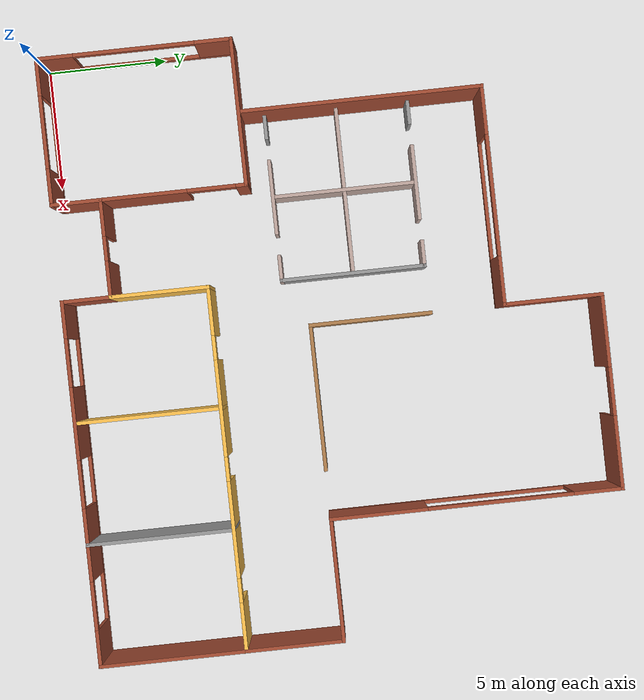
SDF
<?xml version='1.0'?>
<sdf version='1.6'>
  <model name='building'>
    <pose frame=''>12.5 11 0 0 -0 0</pose>
    <link name='Wall_0'>
      <pose frame=''>-9.5 -11 0 0 -0 0</pose>
      <visual name='Wall_0_Visual_0'>
        <pose frame=''>-2.2875 0 1.25 0 -0 0</pose>
        <geometry>
          <box>
            <size>1.575 0.15 2.5</size>
          </box>
        </geometry>
        <material>
          <script>
            <uri>file://media/materials/scripts/gazebo.material</uri>
            <name>Gazebo/Bricks</name>
          </script>
          <ambient>1 1 1 1</ambient>
        </material>
        <meta>
          <layer>0</layer>
        </meta>
      </visual>
      <collision name='Wall_0_Collision_0'>
        <geometry>
          <box>
            <size>1.575 0.15 2.5</size>
          </box>
        </geometry>
        <pose frame=''>-2.2875 0 1.25 0 -0 0</pose>
      </collision>
      <visual name='Wall_0_Visual_1'>
        <pose frame=''>0.7875 0 0.125 0 -0 0</pose>
        <geometry>
          <box>
            <size>4.575 0.15 0.25</size>
          </box>
        </geometry>
        <material>
          <script>
            <uri>file://media/materials/scripts/gazebo.material</uri>
            <name>Gazebo/Bricks</name>
          </script>
          <ambient>1 1 1 1</ambient>
        </material>
        <meta>
          <layer>0</layer>
        </meta>
      </visual>
      <collision name='Wall_0_Collision_1'>
        <geometry>
          <box>
            <size>4.575 0.15 0.25</size>
          </box>
        </geometry>
        <pose frame=''>0.7875 0 0.125 0 -0 0</pose>
      </collision>
      <visual name='Wall_0_Visual_2'>
        <pose frame=''>2.2875 0 1.375 0 -0 0</pose>
        <geometry>
          <box>
            <size>1.575 0.15 2.25</size>
          </box>
        </geometry>
        <material>
          <script>
            <uri>file://media/materials/scripts/gazebo.material</uri>
            <name>Gazebo/Bricks</name>
          </script>
          <ambient>1 1 1 1</ambient>
        </material>
        <meta>
          <layer>0</layer>
        </meta>
      </visual>
      <collision name='Wall_0_Collision_2'>
        <geometry>
          <box>
            <size>1.575 0.15 2.25</size>
          </box>
        </geometry>
        <pose frame=''>2.2875 0 1.375 0 -0 0</pose>
      </collision>
      <visual name='Wall_0_Visual_3'>
        <pose frame=''>0 0 2.375 0 -0 0</pose>
        <geometry>
          <box>
            <size>3 0.15 0.25</size>
          </box>
        </geometry>
        <material>
          <script>
            <uri>file://media/materials/scripts/gazebo.material</uri>
            <name>Gazebo/Bricks</name>
          </script>
          <ambient>1 1 1 1</ambient>
        </material>
        <meta>
          <layer>0</layer>
        </meta>
      </visual>
      <collision name='Wall_0_Collision_3'>
        <geometry>
          <box>
            <size>3 0.15 0.25</size>
          </box>
        </geometry>
        <pose frame=''>0 0 2.375 0 -0 0</pose>
      </collision>
    </link>
    <link name='Wall_10'>
      <pose frame=''>-5 7 0 0 -0 0</pose>
      <visual name='Wall_10_Visual_0'>
        <pose frame=''>-3.53728 0 1.25 0 -0 0</pose>
        <geometry>
          <box>
            <size>2.07543 0.15 2.5</size>
          </box>
        </geometry>
        <material>
          <script>
            <uri>file://media/materials/scripts/gazebo.material</uri>
            <name>Gazebo/Bricks</name>
          </script>
          <ambient>1 1 1 1</ambient>
        </material>
        <meta>
          <layer>0</layer>
        </meta>
      </visual>
      <collision name='Wall_10_Collision_0'>
        <geometry>
          <box>
            <size>2.07543 0.15 2.5</size>
          </box>
        </geometry>
        <pose frame=''>-3.53728 0 1.25 0 -0 0</pose>
      </collision>
      <visual name='Wall_10_Visual_1'>
        <pose frame=''>1.03772 0 0.1 0 -0 0</pose>
        <geometry>
          <box>
            <size>7.07457 0.15 0.2</size>
          </box>
        </geometry>
        <material>
          <script>
            <uri>file://media/materials/scripts/gazebo.material</uri>
            <name>Gazebo/Bricks</name>
          </script>
          <ambient>1 1 1 1</ambient>
        </material>
        <meta>
          <layer>0</layer>
        </meta>
      </visual>
      <collision name='Wall_10_Collision_1'>
        <geometry>
          <box>
            <size>7.07457 0.15 0.2</size>
          </box>
        </geometry>
        <pose frame=''>1.03772 0 0.1 0 -0 0</pose>
      </collision>
      <visual name='Wall_10_Visual_2'>
        <pose frame=''>3.53772 0 1.35 0 -0 0</pose>
        <geometry>
          <box>
            <size>2.07457 0.15 2.3</size>
          </box>
        </geometry>
        <material>
          <script>
            <uri>file://media/materials/scripts/gazebo.material</uri>
            <name>Gazebo/Bricks</name>
          </script>
          <ambient>1 1 1 1</ambient>
        </material>
        <meta>
          <layer>0</layer>
        </meta>
      </visual>
      <collision name='Wall_10_Collision_2'>
        <geometry>
          <box>
            <size>2.07457 0.15 2.3</size>
          </box>
        </geometry>
        <pose frame=''>3.53772 0 1.35 0 -0 0</pose>
      </collision>
      <visual name='Wall_10_Visual_3'>
        <pose frame=''>0.000432 0 2.35 0 -0 0</pose>
        <geometry>
          <box>
            <size>5 0.15 0.3</size>
          </box>
        </geometry>
        <material>
          <script>
            <uri>file://media/materials/scripts/gazebo.material</uri>
            <name>Gazebo/Bricks</name>
          </script>
          <ambient>1 1 1 1</ambient>
        </material>
        <meta>
          <layer>0</layer>
        </meta>
      </visual>
      <collision name='Wall_10_Collision_3'>
        <geometry>
          <box>
            <size>5 0.15 0.3</size>
          </box>
        </geometry>
        <pose frame=''>0.000432 0 2.35 0 -0 0</pose>
      </collision>
    </link>
    <link name='Wall_12'>
      <collision name='Wall_12_Collision'>
        <geometry>
          <box>
            <size>4.15 0.15 2.5</size>
          </box>
        </geometry>
        <pose frame=''>0 0 1.25 0 -0 0</pose>
      </collision>
      <visual name='Wall_12_Visual'>
        <pose frame=''>0 0 1.25 0 -0 0</pose>
        <geometry>
          <box>
            <size>4.15 0.15 2.5</size>
          </box>
        </geometry>
        <material>
          <script>
            <uri>file://media/materials/scripts/gazebo.material</uri>
            <name>Gazebo/Bricks</name>
          </script>
          <ambient>1 1 1 1</ambient>
        </material>
        <meta>
          <layer>0</layer>
        </meta>
      </visual>
      <pose frame=''>-0.5 9 0 0 -0 1.5708</pose>
    </link>
    <link name='Wall_13'>
      <pose frame=''>3.5 11 0 0 -0 0</pose>
      <visual name='Wall_13_Visual_0'>
        <pose frame=''>-2.5375 0 1.25 0 -0 0</pose>
        <geometry>
          <box>
            <size>3.075 0.15 2.5</size>
          </box>
        </geometry>
        <material>
          <script>
            <uri>file://media/materials/scripts/gazebo.material</uri>
            <name>Gazebo/Bricks</name>
          </script>
          <ambient>1 1 1 1</ambient>
        </material>
        <meta>
          <layer>0</layer>
        </meta>
      </visual>
      <collision name='Wall_13_Collision_0'>
        <geometry>
          <box>
            <size>3.075 0.15 2.5</size>
          </box>
        </geometry>
        <pose frame=''>-2.5375 0 1.25 0 -0 0</pose>
      </collision>
      <visual name='Wall_13_Visual_1'>
        <pose frame=''>2.5375 0 1.25 0 -0 0</pose>
        <geometry>
          <box>
            <size>3.075 0.15 2.5</size>
          </box>
        </geometry>
        <material>
          <script>
            <uri>file://media/materials/scripts/gazebo.material</uri>
            <name>Gazebo/Bricks</name>
          </script>
          <ambient>1 1 1 1</ambient>
        </material>
        <meta>
          <layer>0</layer>
        </meta>
      </visual>
      <collision name='Wall_13_Collision_1'>
        <geometry>
          <box>
            <size>3.075 0.15 2.5</size>
          </box>
        </geometry>
        <pose frame=''>2.5375 0 1.25 0 -0 0</pose>
      </collision>
      <visual name='Wall_13_Visual_2'>
        <pose frame=''>0 0 2.25 0 -0 0</pose>
        <geometry>
          <box>
            <size>2 0.15 0.5</size>
          </box>
        </geometry>
        <material>
          <script>
            <uri>file://media/materials/scripts/gazebo.material</uri>
            <name>Gazebo/Bricks</name>
          </script>
          <ambient>1 1 1 1</ambient>
        </material>
        <meta>
          <layer>0</layer>
        </meta>
      </visual>
      <collision name='Wall_13_Collision_2'>
        <geometry>
          <box>
            <size>2 0.15 0.5</size>
          </box>
        </geometry>
        <pose frame=''>0 0 2.25 0 -0 0</pose>
      </collision>
    </link>
    <link name='Wall_15'>
      <pose frame=''>7.5 5 0 0 0 -1.5708</pose>
      <visual name='Wall_15_Visual_0'>
        <pose frame=''>-5.0375 0 1.25 0 -0 0</pose>
        <geometry>
          <box>
            <size>2.075 0.15 2.5</size>
          </box>
        </geometry>
        <material>
          <script>
            <uri>file://media/materials/scripts/gazebo.material</uri>
            <name>Gazebo/Bricks</name>
          </script>
          <ambient>1 1 1 1</ambient>
        </material>
        <meta>
          <layer>0</layer>
        </meta>
      </visual>
      <collision name='Wall_15_Collision_0'>
        <geometry>
          <box>
            <size>2.075 0.15 2.5</size>
          </box>
        </geometry>
        <pose frame=''>-5.0375 0 1.25 0 -0 0</pose>
      </collision>
      <visual name='Wall_15_Visual_1'>
        <pose frame=''>1.0375 0 0.125 0 -0 0</pose>
        <geometry>
          <box>
            <size>10.075 0.15 0.25</size>
          </box>
        </geometry>
        <material>
          <script>
            <uri>file://media/materials/scripts/gazebo.material</uri>
            <name>Gazebo/Bricks</name>
          </script>
          <ambient>1 1 1 1</ambient>
        </material>
        <meta>
          <layer>0</layer>
        </meta>
      </visual>
      <collision name='Wall_15_Collision_1'>
        <geometry>
          <box>
            <size>10.075 0.15 0.25</size>
          </box>
        </geometry>
        <pose frame=''>1.0375 0 0.125 0 -0 0</pose>
      </collision>
      <visual name='Wall_15_Visual_2'>
        <pose frame=''>4.0375 0 1.375 0 -0 0</pose>
        <geometry>
          <box>
            <size>4.075 0.15 2.25</size>
          </box>
        </geometry>
        <material>
          <script>
            <uri>file://media/materials/scripts/gazebo.material</uri>
            <name>Gazebo/Bricks</name>
          </script>
          <ambient>1 1 1 1</ambient>
        </material>
        <meta>
          <layer>0</layer>
        </meta>
      </visual>
      <collision name='Wall_15_Collision_2'>
        <geometry>
          <box>
            <size>4.075 0.15 2.25</size>
          </box>
        </geometry>
        <pose frame=''>4.0375 0 1.375 0 -0 0</pose>
      </collision>
      <visual name='Wall_15_Visual_3'>
        <pose frame=''>-1 0 2.375 0 -0 0</pose>
        <geometry>
          <box>
            <size>6 0.15 0.25</size>
          </box>
        </geometry>
        <material>
          <script>
            <uri>file://media/materials/scripts/gazebo.material</uri>
            <name>Gazebo/Bricks</name>
          </script>
          <ambient>1 1 1 1</ambient>
        </material>
        <meta>
          <layer>0</layer>
        </meta>
      </visual>
      <collision name='Wall_15_Collision_3'>
        <geometry>
          <box>
            <size>6 0.15 0.25</size>
          </box>
        </geometry>
        <pose frame=''>-1 0 2.375 0 -0 0</pose>
      </collision>
    </link>
    <link name='Wall_16'>
      <collision name='Wall_16_Collision'>
        <geometry>
          <box>
            <size>5.15 0.15 2.5</size>
          </box>
        </geometry>
        <pose frame=''>0 0 1.25 0 -0 0</pose>
      </collision>
      <visual name='Wall_16_Visual'>
        <pose frame=''>0 0 1.25 0 -0 0</pose>
        <geometry>
          <box>
            <size>5.15 0.15 2.5</size>
          </box>
        </geometry>
        <material>
          <script>
            <uri>file://media/materials/scripts/gazebo.material</uri>
            <name>Gazebo/Bricks</name>
          </script>
          <ambient>1 1 1 1</ambient>
        </material>
        <meta>
          <layer>0</layer>
        </meta>
      </visual>
      <pose frame=''>10 -1 0 0 -0 0</pose>
    </link>
    <link name='Wall_17'>
      <collision name='Wall_17_Collision'>
        <geometry>
          <box>
            <size>10.15 0.15 2.5</size>
          </box>
        </geometry>
        <pose frame=''>0 0 1.25 0 -0 0</pose>
      </collision>
      <visual name='Wall_17_Visual'>
        <pose frame=''>0 0 1.25 0 -0 0</pose>
        <geometry>
          <box>
            <size>10.15 0.15 2.5</size>
          </box>
        </geometry>
        <material>
          <script>
            <uri>file://media/materials/scripts/gazebo.material</uri>
            <name>Gazebo/Bricks</name>
          </script>
          <ambient>1 1 1 1</ambient>
        </material>
        <meta>
          <layer>0</layer>
        </meta>
      </visual>
      <pose frame=''>12.5 -6 0 0 0 -1.5708</pose>
    </link>
    <link name='Wall_18'>
      <pose frame=''>5 -11 0 0 -0 3.14159</pose>
      <visual name='Wall_18_Visual_0'>
        <pose frame=''>-6.7875 0 1.25 0 -0 0</pose>
        <geometry>
          <box>
            <size>1.575 0.15 2.5</size>
          </box>
        </geometry>
        <material>
          <script>
            <uri>file://media/materials/scripts/gazebo.material</uri>
            <name>Gazebo/Bricks</name>
          </script>
          <ambient>1 1 1 1</ambient>
        </material>
        <meta>
          <layer>0</layer>
        </meta>
      </visual>
      <collision name='Wall_18_Collision_0'>
        <geometry>
          <box>
            <size>1.575 0.15 2.5</size>
          </box>
        </geometry>
        <pose frame=''>-6.7875 0 1.25 0 -0 0</pose>
      </collision>
      <visual name='Wall_18_Visual_1'>
        <pose frame=''>0.7875 0 0.125 0 -0 0</pose>
        <geometry>
          <box>
            <size>13.575 0.15 0.25</size>
          </box>
        </geometry>
        <material>
          <script>
            <uri>file://media/materials/scripts/gazebo.material</uri>
            <name>Gazebo/Bricks</name>
          </script>
          <ambient>1 1 1 1</ambient>
        </material>
        <meta>
          <layer>0</layer>
        </meta>
      </visual>
      <collision name='Wall_18_Collision_1'>
        <geometry>
          <box>
            <size>13.575 0.15 0.25</size>
          </box>
        </geometry>
        <pose frame=''>0.7875 0 0.125 0 -0 0</pose>
      </collision>
      <visual name='Wall_18_Visual_2'>
        <pose frame=''>-2.5 0 1.375 0 -0 0</pose>
        <geometry>
          <box>
            <size>3 0.15 2.25</size>
          </box>
        </geometry>
        <material>
          <script>
            <uri>file://media/materials/scripts/gazebo.material</uri>
            <name>Gazebo/Bricks</name>
          </script>
          <ambient>1 1 1 1</ambient>
        </material>
        <meta>
          <layer>0</layer>
        </meta>
      </visual>
      <collision name='Wall_18_Collision_2'>
        <geometry>
          <box>
            <size>3 0.15 2.25</size>
          </box>
        </geometry>
        <pose frame=''>-2.5 0 1.375 0 -0 0</pose>
      </collision>
      <visual name='Wall_18_Visual_3'>
        <pose frame=''>2.5 0 1.375 0 -0 0</pose>
        <geometry>
          <box>
            <size>3 0.15 2.25</size>
          </box>
        </geometry>
        <material>
          <script>
            <uri>file://media/materials/scripts/gazebo.material</uri>
            <name>Gazebo/Bricks</name>
          </script>
          <ambient>1 1 1 1</ambient>
        </material>
        <meta>
          <layer>0</layer>
        </meta>
      </visual>
      <collision name='Wall_18_Collision_3'>
        <geometry>
          <box>
            <size>3 0.15 2.25</size>
          </box>
        </geometry>
        <pose frame=''>2.5 0 1.375 0 -0 0</pose>
      </collision>
      <visual name='Wall_18_Visual_4'>
        <pose frame=''>6.7875 0 1.375 0 -0 0</pose>
        <geometry>
          <box>
            <size>1.575 0.15 2.25</size>
          </box>
        </geometry>
        <material>
          <script>
            <uri>file://media/materials/scripts/gazebo.material</uri>
            <name>Gazebo/Bricks</name>
          </script>
          <ambient>1 1 1 1</ambient>
        </material>
        <meta>
          <layer>0</layer>
        </meta>
      </visual>
      <collision name='Wall_18_Collision_4'>
        <geometry>
          <box>
            <size>1.575 0.15 2.25</size>
          </box>
        </geometry>
        <pose frame=''>6.7875 0 1.375 0 -0 0</pose>
      </collision>
      <visual name='Wall_18_Visual_5'>
        <pose frame=''>-5 0 2.375 0 -0 0</pose>
        <geometry>
          <box>
            <size>2 0.15 0.25</size>
          </box>
        </geometry>
        <material>
          <script>
            <uri>file://media/materials/scripts/gazebo.material</uri>
            <name>Gazebo/Bricks</name>
          </script>
          <ambient>1 1 1 1</ambient>
        </material>
        <meta>
          <layer>0</layer>
        </meta>
      </visual>
      <collision name='Wall_18_Collision_5'>
        <geometry>
          <box>
            <size>2 0.15 0.25</size>
          </box>
        </geometry>
        <pose frame=''>-5 0 2.375 0 -0 0</pose>
      </collision>
      <visual name='Wall_18_Visual_6'>
        <pose frame=''>-0 0 2.375 0 -0 0</pose>
        <geometry>
          <box>
            <size>2 0.15 0.25</size>
          </box>
        </geometry>
        <material>
          <script>
            <uri>file://media/materials/scripts/gazebo.material</uri>
            <name>Gazebo/Bricks</name>
          </script>
          <ambient>1 1 1 1</ambient>
        </material>
        <meta>
          <layer>0</layer>
        </meta>
      </visual>
      <collision name='Wall_18_Collision_6'>
        <geometry>
          <box>
            <size>2 0.15 0.25</size>
          </box>
        </geometry>
        <pose frame=''>-0 0 2.375 0 -0 0</pose>
      </collision>
      <visual name='Wall_18_Visual_7'>
        <pose frame=''>5 0 2.375 0 -0 0</pose>
        <geometry>
          <box>
            <size>2 0.15 0.25</size>
          </box>
        </geometry>
        <material>
          <script>
            <uri>file://media/materials/scripts/gazebo.material</uri>
            <name>Gazebo/Bricks</name>
          </script>
          <ambient>1 1 1 1</ambient>
        </material>
        <meta>
          <layer>0</layer>
        </meta>
      </visual>
      <collision name='Wall_18_Collision_7'>
        <geometry>
          <box>
            <size>2 0.15 0.25</size>
          </box>
        </geometry>
        <pose frame=''>5 0 2.375 0 -0 0</pose>
      </collision>
    </link>
    <link name='Wall_19'>
      <collision name='Wall_19_Collision'>
        <geometry>
          <box>
            <size>2.15 0.15 2.5</size>
          </box>
        </geometry>
        <pose frame=''>0 0 1.25 0 -0 0</pose>
      </collision>
      <visual name='Wall_19_Visual'>
        <pose frame=''>0 0 1.25 0 -0 0</pose>
        <geometry>
          <box>
            <size>2.15 0.15 2.5</size>
          </box>
        </geometry>
        <material>
          <script>
            <uri>file://media/materials/scripts/gazebo.material</uri>
            <name>Gazebo/Bricks</name>
          </script>
          <ambient>1 1 1 1</ambient>
        </material>
        <meta>
          <layer>0</layer>
        </meta>
      </visual>
      <pose frame=''>-2.5 -10 0 0 -0 1.5708</pose>
    </link>
    <link name='Wall_20'>
      <pose frame=''>-4.5 -9 0 0 -0 3.14159</pose>
      <visual name='Wall_20_Visual_0'>
        <pose frame=''>-1.2875 0 1.25 0 -0 0</pose>
        <geometry>
          <box>
            <size>1.575 0.15 2.5</size>
          </box>
        </geometry>
        <material>
          <script>
            <uri>file://media/materials/scripts/gazebo.material</uri>
            <name>Gazebo/Bricks</name>
          </script>
          <ambient>1 1 1 1</ambient>
        </material>
        <meta>
          <layer>0</layer>
        </meta>
      </visual>
      <collision name='Wall_20_Collision_0'>
        <geometry>
          <box>
            <size>1.575 0.15 2.5</size>
          </box>
        </geometry>
        <pose frame=''>-1.2875 0 1.25 0 -0 0</pose>
      </collision>
      <visual name='Wall_20_Visual_1'>
        <pose frame=''>1.2875 0 1.25 0 -0 0</pose>
        <geometry>
          <box>
            <size>1.575 0.15 2.5</size>
          </box>
        </geometry>
        <material>
          <script>
            <uri>file://media/materials/scripts/gazebo.material</uri>
            <name>Gazebo/Bricks</name>
          </script>
          <ambient>1 1 1 1</ambient>
        </material>
        <meta>
          <layer>0</layer>
        </meta>
      </visual>
      <collision name='Wall_20_Collision_1'>
        <geometry>
          <box>
            <size>1.575 0.15 2.5</size>
          </box>
        </geometry>
        <pose frame=''>1.2875 0 1.25 0 -0 0</pose>
      </collision>
      <visual name='Wall_20_Visual_2'>
        <pose frame=''>0 0 2.25 0 -0 0</pose>
        <geometry>
          <box>
            <size>1 0.15 0.5</size>
          </box>
        </geometry>
        <material>
          <script>
            <uri>file://media/materials/scripts/gazebo.material</uri>
            <name>Gazebo/Bricks</name>
          </script>
          <ambient>1 1 1 1</ambient>
        </material>
        <meta>
          <layer>0</layer>
        </meta>
      </visual>
      <collision name='Wall_20_Collision_2'>
        <geometry>
          <box>
            <size>1 0.15 0.5</size>
          </box>
        </geometry>
        <pose frame=''>0 0 2.25 0 -0 0</pose>
      </collision>
    </link>
    <link name='Wall_22'>
      <collision name='Wall_22_Collision'>
        <geometry>
          <box>
            <size>4.15 0.15 2.5</size>
          </box>
        </geometry>
        <pose frame=''>0 0 1.25 0 -0 0</pose>
      </collision>
      <visual name='Wall_22_Visual'>
        <pose frame=''>0 0 1.25 0 -0 0</pose>
        <geometry>
          <box>
            <size>4.15 0.15 2.5</size>
          </box>
        </geometry>
        <material>
          <script>
            <uri>file://media/materials/scripts/gazebo.material</uri>
            <name>Gazebo/Grey</name>
          </script>
          <ambient>1 0.764706 0.305882 1</ambient>
        </material>
        <meta>
          <layer>0</layer>
        </meta>
      </visual>
      <pose frame=''>-2.5 -7 0 0 -0 1.5708</pose>
    </link>
    <link name='Wall_23'>
      <pose frame=''>5 -5 0 0 -0 0</pose>
      <visual name='Wall_23_Visual_0'>
        <pose frame=''>-6.5375 0 1.25 0 -0 0</pose>
        <geometry>
          <box>
            <size>2.075 0.15 2.5</size>
          </box>
        </geometry>
        <material>
          <script>
            <uri>file://media/materials/scripts/gazebo.material</uri>
            <name>Gazebo/Grey</name>
          </script>
          <ambient>1 0.764706 0.305882 1</ambient>
        </material>
        <meta>
          <layer>0</layer>
        </meta>
      </visual>
      <collision name='Wall_23_Collision_0'>
        <geometry>
          <box>
            <size>2.075 0.15 2.5</size>
          </box>
        </geometry>
        <pose frame=''>-6.5375 0 1.25 0 -0 0</pose>
      </collision>
      <visual name='Wall_23_Visual_1'>
        <pose frame=''>-2.5 0 1.25 0 -0 0</pose>
        <geometry>
          <box>
            <size>4 0.15 2.5</size>
          </box>
        </geometry>
        <material>
          <script>
            <uri>file://media/materials/scripts/gazebo.material</uri>
            <name>Gazebo/Grey</name>
          </script>
          <ambient>1 0.764706 0.305882 1</ambient>
        </material>
        <meta>
          <layer>0</layer>
        </meta>
      </visual>
      <collision name='Wall_23_Collision_1'>
        <geometry>
          <box>
            <size>4 0.15 2.5</size>
          </box>
        </geometry>
        <pose frame=''>-2.5 0 1.25 0 -0 0</pose>
      </collision>
      <visual name='Wall_23_Visual_2'>
        <pose frame=''>2.5 0 1.25 0 -0 0</pose>
        <geometry>
          <box>
            <size>4 0.15 2.5</size>
          </box>
        </geometry>
        <material>
          <script>
            <uri>file://media/materials/scripts/gazebo.material</uri>
            <name>Gazebo/Grey</name>
          </script>
          <ambient>1 0.764706 0.305882 1</ambient>
        </material>
        <meta>
          <layer>0</layer>
        </meta>
      </visual>
      <collision name='Wall_23_Collision_2'>
        <geometry>
          <box>
            <size>4 0.15 2.5</size>
          </box>
        </geometry>
        <pose frame=''>2.5 0 1.25 0 -0 0</pose>
      </collision>
      <visual name='Wall_23_Visual_3'>
        <pose frame=''>6.5375 0 1.25 0 -0 0</pose>
        <geometry>
          <box>
            <size>2.075 0.15 2.5</size>
          </box>
        </geometry>
        <material>
          <script>
            <uri>file://media/materials/scripts/gazebo.material</uri>
            <name>Gazebo/Grey</name>
          </script>
          <ambient>1 0.764706 0.305882 1</ambient>
        </material>
        <meta>
          <layer>0</layer>
        </meta>
      </visual>
      <collision name='Wall_23_Collision_3'>
        <geometry>
          <box>
            <size>2.075 0.15 2.5</size>
          </box>
        </geometry>
        <pose frame=''>6.5375 0 1.25 0 -0 0</pose>
      </collision>
      <visual name='Wall_23_Visual_4'>
        <pose frame=''>-5 0 2.25 0 -0 0</pose>
        <geometry>
          <box>
            <size>1 0.15 0.5</size>
          </box>
        </geometry>
        <material>
          <script>
            <uri>file://media/materials/scripts/gazebo.material</uri>
            <name>Gazebo/Grey</name>
          </script>
          <ambient>1 0.764706 0.305882 1</ambient>
        </material>
        <meta>
          <layer>0</layer>
        </meta>
      </visual>
      <collision name='Wall_23_Collision_4'>
        <geometry>
          <box>
            <size>1 0.15 0.5</size>
          </box>
        </geometry>
        <pose frame=''>-5 0 2.25 0 -0 0</pose>
      </collision>
      <visual name='Wall_23_Visual_5'>
        <pose frame=''>-0 0 2.25 0 -0 0</pose>
        <geometry>
          <box>
            <size>1 0.15 0.5</size>
          </box>
        </geometry>
        <material>
          <script>
            <uri>file://media/materials/scripts/gazebo.material</uri>
            <name>Gazebo/Grey</name>
          </script>
          <ambient>1 0.764706 0.305882 1</ambient>
        </material>
        <meta>
          <layer>0</layer>
        </meta>
      </visual>
      <collision name='Wall_23_Collision_5'>
        <geometry>
          <box>
            <size>1 0.15 0.5</size>
          </box>
        </geometry>
        <pose frame=''>-0 0 2.25 0 -0 0</pose>
      </collision>
      <visual name='Wall_23_Visual_6'>
        <pose frame=''>5 0 2.25 0 -0 0</pose>
        <geometry>
          <box>
            <size>1 0.15 0.5</size>
          </box>
        </geometry>
        <material>
          <script>
            <uri>file://media/materials/scripts/gazebo.material</uri>
            <name>Gazebo/Grey</name>
          </script>
          <ambient>1 0.764706 0.305882 1</ambient>
        </material>
        <meta>
          <layer>0</layer>
        </meta>
      </visual>
      <collision name='Wall_23_Collision_6'>
        <geometry>
          <box>
            <size>1 0.15 0.5</size>
          </box>
        </geometry>
        <pose frame=''>5 0 2.25 0 -0 0</pose>
      </collision>
    </link>
    <link name='Wall_25'>
      <collision name='Wall_25_Collision'>
        <geometry>
          <box>
            <size>6.15 0.15 2.5</size>
          </box>
        </geometry>
        <pose frame=''>0 0 1.25 0 -0 0</pose>
      </collision>
      <visual name='Wall_25_Visual'>
        <pose frame=''>0 0 1.25 0 -0 0</pose>
        <geometry>
          <box>
            <size>6.15 0.15 2.5</size>
          </box>
        </geometry>
        <material>
          <script>
            <uri>file://media/materials/scripts/gazebo.material</uri>
            <name>Gazebo/Grey</name>
          </script>
          <ambient>1 0.764706 0.305882 1</ambient>
        </material>
        <meta>
          <layer>0</layer>
        </meta>
      </visual>
      <pose frame=''>2.5 -8 0 0 0 -1.5708</pose>
    </link>
    <link name='Wall_27'>
      <collision name='Wall_27_Collision'>
        <geometry>
          <box>
            <size>6.15 0.15 2.5</size>
          </box>
        </geometry>
        <pose frame=''>0 0 1.25 0 -0 0</pose>
      </collision>
      <visual name='Wall_27_Visual'>
        <pose frame=''>0 0 1.25 0 -0 0</pose>
        <geometry>
          <box>
            <size>6.15 0.15 2.5</size>
          </box>
        </geometry>
        <material>
          <script>
            <uri>file://media/materials/scripts/gazebo.material</uri>
            <name>Gazebo/Grey</name>
          </script>
          <ambient>1 1 1 1</ambient>
        </material>
        <meta>
          <layer>0</layer>
        </meta>
      </visual>
      <pose frame=''>7.5 -8 0 0 0 -1.5708</pose>
    </link>
    <link name='Wall_31'>
      <collision name='Wall_31_Collision'>
        <geometry>
          <box>
            <size>1.15 0.15 1.5</size>
          </box>
        </geometry>
        <pose frame=''>0 0 0.75 0 -0 0</pose>
      </collision>
      <visual name='Wall_31_Visual'>
        <pose frame=''>0 0 0.75 0 -0 0</pose>
        <geometry>
          <box>
            <size>1.15 0.15 1.5</size>
          </box>
        </geometry>
        <material>
          <script>
            <uri>file://media/materials/scripts/gazebo.material</uri>
            <name>Gazebo/Grey</name>
          </script>
          <ambient>1 1 1 1</ambient>
        </material>
        <meta>
          <layer>0</layer>
        </meta>
      </visual>
      <pose frame=''>-9 4 0 0 -0 0</pose>
    </link>
    <link name='Wall_33'>
      <collision name='Wall_33_Collision'>
        <geometry>
          <box>
            <size>3.15 0.15 1.5</size>
          </box>
        </geometry>
        <pose frame=''>0 0 0.75 0 -0 0</pose>
      </collision>
      <visual name='Wall_33_Visual'>
        <pose frame=''>0 0 0.75 0 -0 0</pose>
        <geometry>
          <box>
            <size>3.15 0.15 1.5</size>
          </box>
        </geometry>
        <material>
          <script>
            <uri>file://media/materials/scripts/gazebo.material</uri>
            <name>Gazebo/Grey</name>
          </script>
          <ambient>0.760784 0.662745 0.627451 1</ambient>
        </material>
        <meta>
          <layer>0</layer>
        </meta>
      </visual>
      <pose frame=''>-6 4 0 0 -0 0</pose>
    </link>
    <link name='Wall_35'>
      <collision name='Wall_35_Collision'>
        <geometry>
          <box>
            <size>1.15 0.15 1.5</size>
          </box>
        </geometry>
        <pose frame=''>0 0 0.75 0 -0 0</pose>
      </collision>
      <visual name='Wall_35_Visual'>
        <pose frame=''>0 0 0.75 0 -0 0</pose>
        <geometry>
          <box>
            <size>1.15 0.15 1.5</size>
          </box>
        </geometry>
        <material>
          <script>
            <uri>file://media/materials/scripts/gazebo.material</uri>
            <name>Gazebo/Grey</name>
          </script>
          <ambient>0.760784 0.662745 0.627451 1</ambient>
        </material>
        <meta>
          <layer>0</layer>
        </meta>
      </visual>
      <pose frame=''>-3 4 0 0 -0 0</pose>
    </link>
    <link name='Wall_36'>
      <collision name='Wall_36_Collision'>
        <geometry>
          <box>
            <size>6.15 0.15 1.5</size>
          </box>
        </geometry>
        <pose frame=''>0 0 0.75 0 -0 0</pose>
      </collision>
      <visual name='Wall_36_Visual'>
        <pose frame=''>0 0 0.75 0 -0 0</pose>
        <geometry>
          <box>
            <size>6.15 0.15 1.5</size>
          </box>
        </geometry>
        <material>
          <script>
            <uri>file://media/materials/scripts/gazebo.material</uri>
            <name>Gazebo/Grey</name>
          </script>
          <ambient>1 1 1 1</ambient>
        </material>
        <meta>
          <layer>0</layer>
        </meta>
      </visual>
      <pose frame=''>-2.5 1 0 0 0 -1.5708</pose>
    </link>
    <link name='Wall_38'>
      <collision name='Wall_38_Collision'>
        <geometry>
          <box>
            <size>1.15 0.15 1.5</size>
          </box>
        </geometry>
        <pose frame=''>0 0 0.75 0 -0 0</pose>
      </collision>
      <visual name='Wall_38_Visual'>
        <pose frame=''>0 0 0.75 0 -0 0</pose>
        <geometry>
          <box>
            <size>1.15 0.15 1.5</size>
          </box>
        </geometry>
        <material>
          <script>
            <uri>file://media/materials/scripts/gazebo.material</uri>
            <name>Gazebo/Grey</name>
          </script>
          <ambient>0.760784 0.662745 0.627451 1</ambient>
        </material>
        <meta>
          <layer>0</layer>
        </meta>
      </visual>
      <pose frame=''>-3 -2 0 0 -0 3.14159</pose>
    </link>
    <link name='Wall_40'>
      <collision name='Wall_40_Collision'>
        <geometry>
          <box>
            <size>3.15 0.15 1.5</size>
          </box>
        </geometry>
        <pose frame=''>0 0 0.75 0 -0 0</pose>
      </collision>
      <visual name='Wall_40_Visual'>
        <pose frame=''>0 0 0.75 0 -0 0</pose>
        <geometry>
          <box>
            <size>3.15 0.15 1.5</size>
          </box>
        </geometry>
        <material>
          <script>
            <uri>file://media/materials/scripts/gazebo.material</uri>
            <name>Gazebo/Grey</name>
          </script>
          <ambient>0.760784 0.662745 0.627451 1</ambient>
        </material>
        <meta>
          <layer>0</layer>
        </meta>
      </visual>
      <pose frame=''>-6 -2 0 0 -0 3.14159</pose>
    </link>
    <link name='Wall_42'>
      <collision name='Wall_42_Collision'>
        <geometry>
          <box>
            <size>1.15 0.15 1.5</size>
          </box>
        </geometry>
        <pose frame=''>0 0 0.75 0 -0 0</pose>
      </collision>
      <visual name='Wall_42_Visual'>
        <pose frame=''>0 0 0.75 0 -0 0</pose>
        <geometry>
          <box>
            <size>1.15 0.15 1.5</size>
          </box>
        </geometry>
        <material>
          <script>
            <uri>file://media/materials/scripts/gazebo.material</uri>
            <name>Gazebo/Grey</name>
          </script>
          <ambient>1 1 1 1</ambient>
        </material>
        <meta>
          <layer>0</layer>
        </meta>
      </visual>
      <pose frame=''>-9 -2 0 0 -0 3.14159</pose>
    </link>
    <link name='Wall_44'>
      <collision name='Wall_44_Collision'>
        <geometry>
          <box>
            <size>6.15 0.15 1.5</size>
          </box>
        </geometry>
        <pose frame=''>0 0 0.75 0 -0 0</pose>
      </collision>
      <visual name='Wall_44_Visual'>
        <pose frame=''>0 0 0.75 0 -0 0</pose>
        <geometry>
          <box>
            <size>6.15 0.15 1.5</size>
          </box>
        </geometry>
        <material>
          <script>
            <uri>file://media/materials/scripts/gazebo.material</uri>
            <name>Gazebo/Grey</name>
          </script>
          <ambient>0.760784 0.662745 0.627451 1</ambient>
        </material>
        <meta>
          <layer>0</layer>
        </meta>
      </visual>
      <pose frame=''>-6 1 0 0 0 -1.5708</pose>
    </link>
    <link name='Wall_46'>
      <collision name='Wall_46_Collision'>
        <geometry>
          <box>
            <size>7.15 0.15 1.5</size>
          </box>
        </geometry>
        <pose frame=''>0 0 0.75 0 -0 0</pose>
      </collision>
      <visual name='Wall_46_Visual'>
        <pose frame=''>0 0 0.75 0 -0 0</pose>
        <geometry>
          <box>
            <size>7.15 0.15 1.5</size>
          </box>
        </geometry>
        <material>
          <script>
            <uri>file://media/materials/scripts/gazebo.material</uri>
            <name>Gazebo/Grey</name>
          </script>
          <ambient>0.760784 0.662745 0.627451 1</ambient>
        </material>
        <meta>
          <layer>0</layer>
        </meta>
      </visual>
      <pose frame=''>-6 1 0 0 -0 0</pose>
    </link>
    <link name='Wall_48'>
      <collision name='Wall_48_Collision'>
        <geometry>
          <box>
            <size>5.15 0.15 2</size>
          </box>
        </geometry>
        <pose frame=''>0 0 1 0 -0 0</pose>
      </collision>
      <visual name='Wall_48_Visual'>
        <pose frame=''>0 0 1 0 -0 0</pose>
        <geometry>
          <box>
            <size>5.15 0.15 2</size>
          </box>
        </geometry>
        <material>
          <script>
            <uri>file://media/materials/scripts/gazebo.material</uri>
            <name>Gazebo/Wood</name>
          </script>
          <ambient>0.760784 0.662745 0.627451 1</ambient>
        </material>
        <meta>
          <layer>0</layer>
        </meta>
      </visual>
      <pose frame=''>-0.5 1.5 0 0 0 -1.5708</pose>
    </link>
    <link name='Wall_49'>
      <collision name='Wall_49_Collision'>
        <geometry>
          <box>
            <size>6.15 0.15 2</size>
          </box>
        </geometry>
        <pose frame=''>0 0 1 0 -0 0</pose>
      </collision>
      <visual name='Wall_49_Visual'>
        <pose frame=''>0 0 1 0 -0 0</pose>
        <geometry>
          <box>
            <size>6.15 0.15 2</size>
          </box>
        </geometry>
        <material>
          <script>
            <uri>file://media/materials/scripts/gazebo.material</uri>
            <name>Gazebo/Wood</name>
          </script>
          <ambient>0.760784 0.662745 0.627451 1</ambient>
        </material>
        <meta>
          <layer>0</layer>
        </meta>
      </visual>
      <pose frame=''>2.5 -1 0 0 -0 0</pose>
    </link>
    <link name='Wall_5'>
      <pose frame=''>-12.5 -7 0 0 -0 1.5708</pose>
      <visual name='Wall_5_Visual_0'>
        <pose frame=''>-3.2875 0 1.25 0 -0 0</pose>
        <geometry>
          <box>
            <size>1.575 0.15 2.5</size>
          </box>
        </geometry>
        <material>
          <script>
            <uri>file://media/materials/scripts/gazebo.material</uri>
            <name>Gazebo/Bricks</name>
          </script>
          <ambient>1 1 1 1</ambient>
        </material>
        <meta>
          <layer>0</layer>
        </meta>
      </visual>
      <collision name='Wall_5_Collision_0'>
        <geometry>
          <box>
            <size>1.575 0.15 2.5</size>
          </box>
        </geometry>
        <pose frame=''>-3.2875 0 1.25 0 -0 0</pose>
      </collision>
      <visual name='Wall_5_Visual_1'>
        <pose frame=''>0.7875 0 0.125 0 -0 0</pose>
        <geometry>
          <box>
            <size>6.575 0.15 0.25</size>
          </box>
        </geometry>
        <material>
          <script>
            <uri>file://media/materials/scripts/gazebo.material</uri>
            <name>Gazebo/Bricks</name>
          </script>
          <ambient>1 1 1 1</ambient>
        </material>
        <meta>
          <layer>0</layer>
        </meta>
      </visual>
      <collision name='Wall_5_Collision_1'>
        <geometry>
          <box>
            <size>6.575 0.15 0.25</size>
          </box>
        </geometry>
        <pose frame=''>0.7875 0 0.125 0 -0 0</pose>
      </collision>
      <visual name='Wall_5_Visual_2'>
        <pose frame=''>3.2875 0 1.375 0 -0 0</pose>
        <geometry>
          <box>
            <size>1.575 0.15 2.25</size>
          </box>
        </geometry>
        <material>
          <script>
            <uri>file://media/materials/scripts/gazebo.material</uri>
            <name>Gazebo/Bricks</name>
          </script>
          <ambient>1 1 1 1</ambient>
        </material>
        <meta>
          <layer>0</layer>
        </meta>
      </visual>
      <collision name='Wall_5_Collision_2'>
        <geometry>
          <box>
            <size>1.575 0.15 2.25</size>
          </box>
        </geometry>
        <pose frame=''>3.2875 0 1.375 0 -0 0</pose>
      </collision>
      <visual name='Wall_5_Visual_3'>
        <pose frame=''>0 0 2.375 0 -0 0</pose>
        <geometry>
          <box>
            <size>5 0.15 0.25</size>
          </box>
        </geometry>
        <material>
          <script>
            <uri>file://media/materials/scripts/gazebo.material</uri>
            <name>Gazebo/Bricks</name>
          </script>
          <ambient>1 1 1 1</ambient>
        </material>
        <meta>
          <layer>0</layer>
        </meta>
      </visual>
      <collision name='Wall_5_Collision_3'>
        <geometry>
          <box>
            <size>5 0.15 0.25</size>
          </box>
        </geometry>
        <pose frame=''>0 0 2.375 0 -0 0</pose>
      </collision>
    </link>
    <link name='Wall_6'>
      <collision name='Wall_6_Collision'>
        <geometry>
          <box>
            <size>6.15 0.15 2.5</size>
          </box>
        </geometry>
        <pose frame=''>0 0 1.25 0 -0 0</pose>
      </collision>
      <visual name='Wall_6_Visual'>
        <pose frame=''>0 0 1.25 0 -0 0</pose>
        <geometry>
          <box>
            <size>6.15 0.15 2.5</size>
          </box>
        </geometry>
        <material>
          <script>
            <uri>file://media/materials/scripts/gazebo.material</uri>
            <name>Gazebo/Bricks</name>
          </script>
          <ambient>1 1 1 1</ambient>
        </material>
        <meta>
          <layer>0</layer>
        </meta>
      </visual>
      <pose frame=''>-9.5 -3 0 0 -0 0</pose>
    </link>
    <link name='Wall_7'>
      <pose frame=''>-6.5 -7 0 0 0 -1.5708</pose>
      <visual name='Wall_7_Visual_0'>
        <pose frame=''>-3.82228 0 1.25 0 -0 0</pose>
        <geometry>
          <box>
            <size>0.505444 0.15 2.5</size>
          </box>
        </geometry>
        <material>
          <script>
            <uri>file://media/materials/scripts/gazebo.material</uri>
            <name>Gazebo/Bricks</name>
          </script>
          <ambient>1 1 1 1</ambient>
        </material>
        <meta>
          <layer>0</layer>
        </meta>
      </visual>
      <collision name='Wall_7_Collision_0'>
        <geometry>
          <box>
            <size>0.505444 0.15 2.5</size>
          </box>
        </geometry>
        <pose frame=''>-3.82228 0 1.25 0 -0 0</pose>
      </collision>
      <visual name='Wall_7_Visual_1'>
        <pose frame=''>1.25272 0 1.25 0 -0 0</pose>
        <geometry>
          <box>
            <size>5.64456 0.15 2.5</size>
          </box>
        </geometry>
        <material>
          <script>
            <uri>file://media/materials/scripts/gazebo.material</uri>
            <name>Gazebo/Bricks</name>
          </script>
          <ambient>1 1 1 1</ambient>
        </material>
        <meta>
          <layer>0</layer>
        </meta>
      </visual>
      <collision name='Wall_7_Collision_1'>
        <geometry>
          <box>
            <size>5.64456 0.15 2.5</size>
          </box>
        </geometry>
        <pose frame=''>1.25272 0 1.25 0 -0 0</pose>
      </collision>
      <visual name='Wall_7_Visual_2'>
        <pose frame=''>-2.56956 0 2.25 0 -0 0</pose>
        <geometry>
          <box>
            <size>2 0.15 0.5</size>
          </box>
        </geometry>
        <material>
          <script>
            <uri>file://media/materials/scripts/gazebo.material</uri>
            <name>Gazebo/Bricks</name>
          </script>
          <ambient>1 1 1 1</ambient>
        </material>
        <meta>
          <layer>0</layer>
        </meta>
      </visual>
      <collision name='Wall_7_Collision_2'>
        <geometry>
          <box>
            <size>2 0.15 0.5</size>
          </box>
        </geometry>
        <pose frame=''>-2.56956 0 2.25 0 -0 0</pose>
      </collision>
    </link>
    <link name='Wall_9'>
      <collision name='Wall_9_Collision'>
        <geometry>
          <box>
            <size>10.15 0.15 2.5</size>
          </box>
        </geometry>
        <pose frame=''>0 0 1.25 0 -0 0</pose>
      </collision>
      <visual name='Wall_9_Visual'>
        <pose frame=''>0 0 1.25 0 -0 0</pose>
        <geometry>
          <box>
            <size>10.15 0.15 2.5</size>
          </box>
        </geometry>
        <material>
          <script>
            <uri>file://media/materials/scripts/gazebo.material</uri>
            <name>Gazebo/Bricks</name>
          </script>
          <ambient>1 1 1 1</ambient>
        </material>
        <meta>
          <layer>0</layer>
        </meta>
      </visual>
      <pose frame=''>-9.5 2 0 0 -0 1.5708</pose>
    </link>
    <static>1</static>
  </model>
</sdf>
